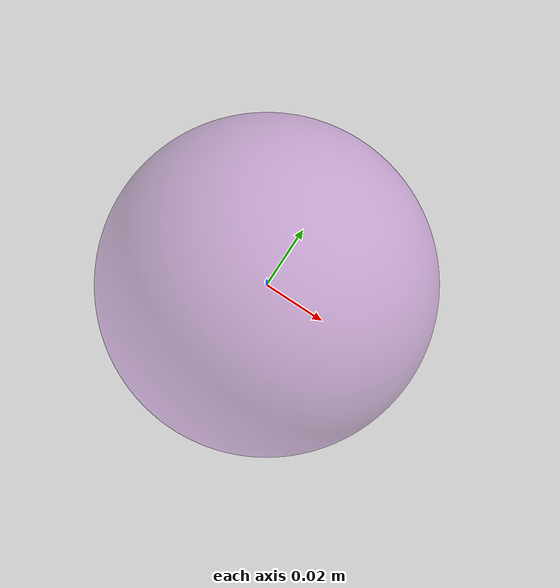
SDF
<?xml version="1.0" ?>
<sdf version="1.6">
  <world name="world">
    <model name="jellyfish">
      <pose>0 0 0 0 0 0</pose>
      <link name="base_link">
        <pose>0 0 0 0 0 0</pose>
        <inertial>
          <pose>0 0 0.025037438901 0 0 0</pose>
          <mass>0.07546768732</mass>
          <inertia>
            <ixx>7.893193369e-05</ixx>
            <ixy>0</ixy>
            <ixz>0</ixz>
            <iyy>7.893193369e-05</iyy>
            <iyz>0</iyz>
            <izz>1.262487591e-04</izz>
          </inertia>
        </inertial>
        <collision name="base_link_collision">
          <pose>0 0 0 0 0 0</pose>
          <geometry>
            <mesh>
              <uri>meshes/jellyfish.stl</uri>
              <scale>1.0 1.0 1.0</scale>
            </mesh>
          </geometry>
        </collision>
        <visual name="base_link_visual">
          <pose>0 0 0 0 0 0</pose>
          <geometry>
            <mesh>
              <uri>meshes/jellyfish.stl</uri>
              <scale>1.0 1.0 1.0</scale>
            </mesh>
          </geometry>
          <material>
            <ambient>0.6 0.3 0.7 0.45</ambient>
            <diffuse>0.8 0.5 0.9 0.45</diffuse>
            <specular>0.9 0.9 0.9 0.5</specular>
            <emissive>0.1 0.05 0.15 1</emissive>
          </material>
        </visual>
      </link>
    </model>
  </world>
</sdf>
